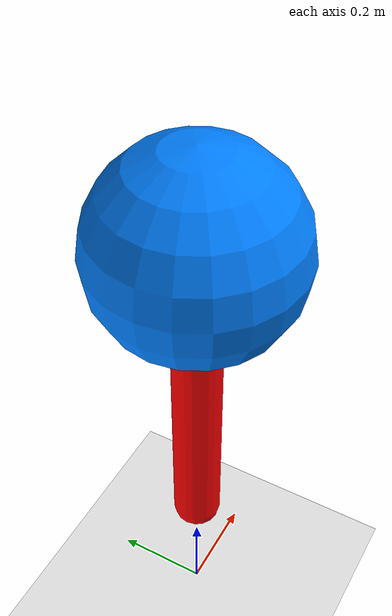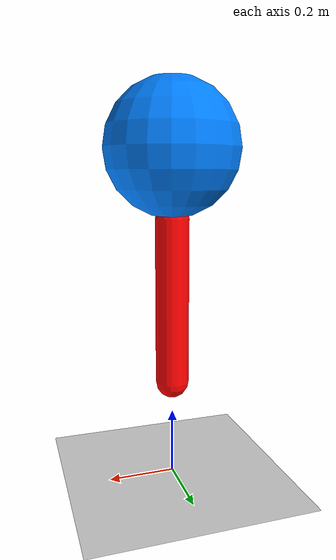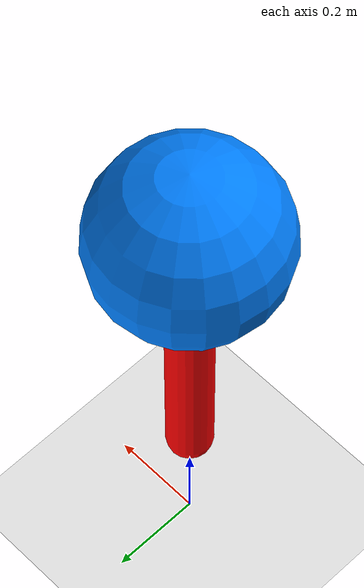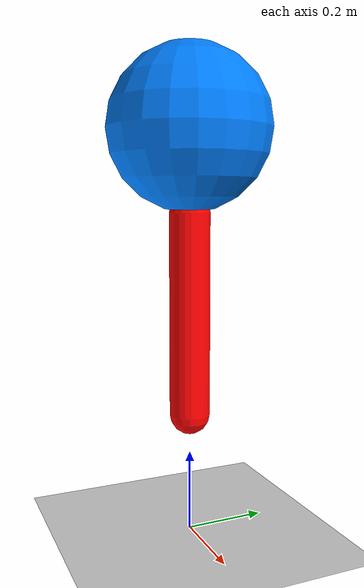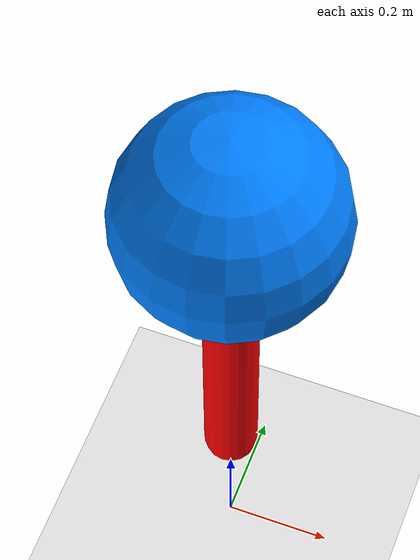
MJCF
<mujoco model="MuJoCo Model">
  <compiler angle="radian"/>

  <worldbody>
    <geom size="5 5 0.1" type="plane" rgba="0.9 0.9 0.9 1"/>
    <light pos="0 0 3" dir="0 0 -1"/>
    <body name="torso" pos="0 0 1">
      <joint type="free"/>
      <geom size="0.2" rgba="0 0.5 1 1"/>
      <body name="leg" pos="0 0 -0.2">
        <joint name="knee" pos="0 0 0" axis="0 1 0"/>
        <geom size="0.05 0.25" pos="0 0 -0.25" type="capsule" rgba="1 0 0 1"/>
      </body>
    </body>
  </worldbody>
</mujoco>
